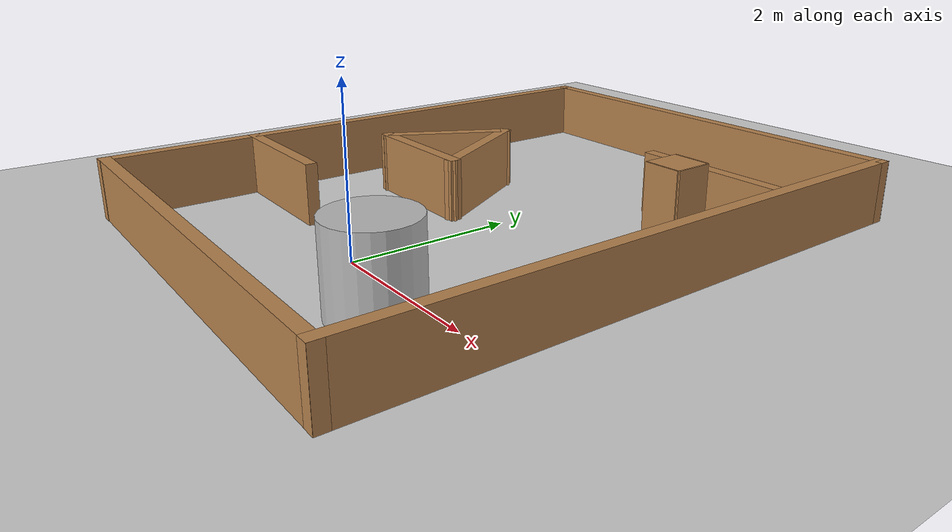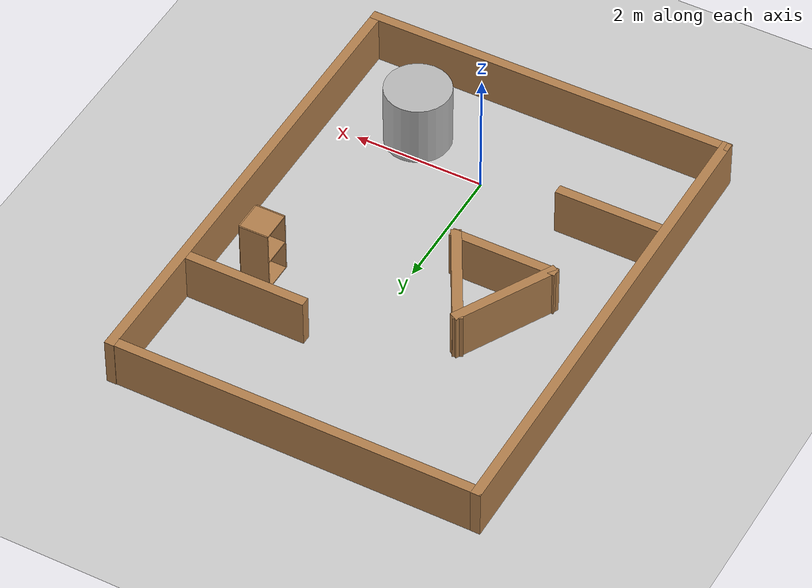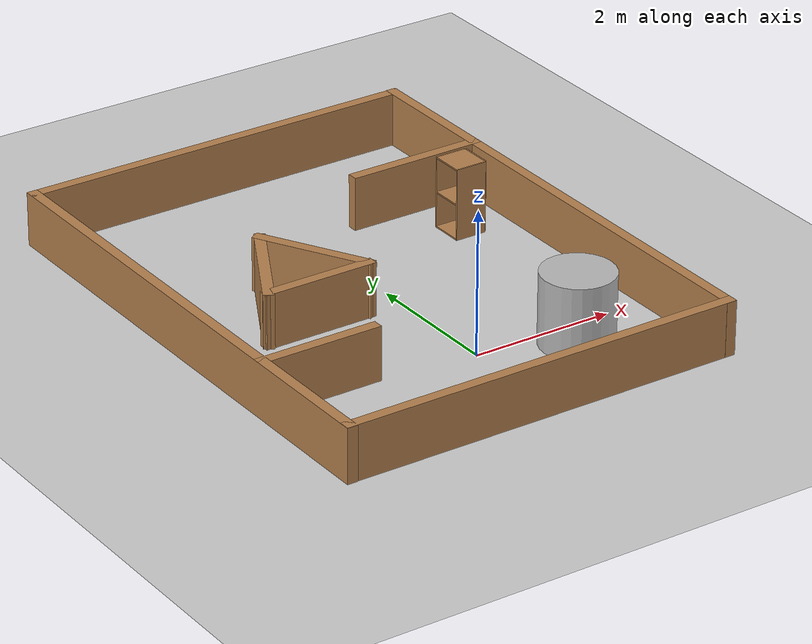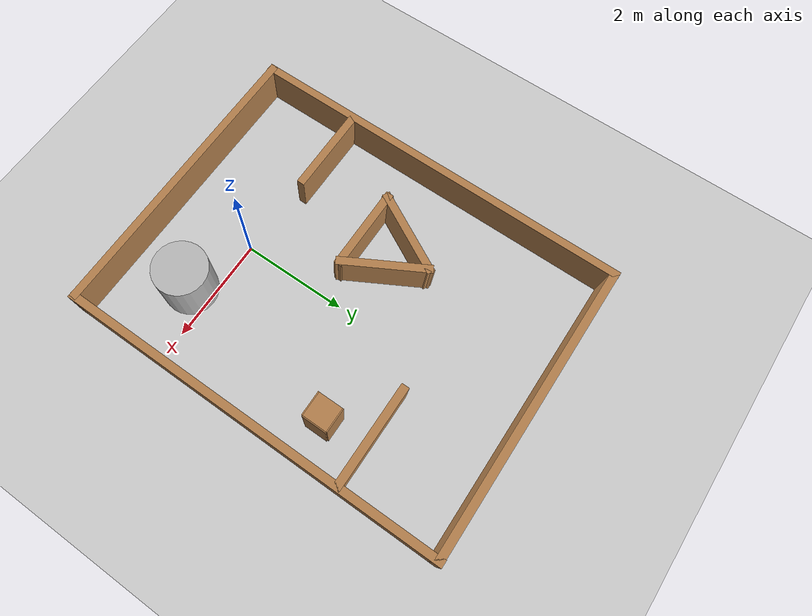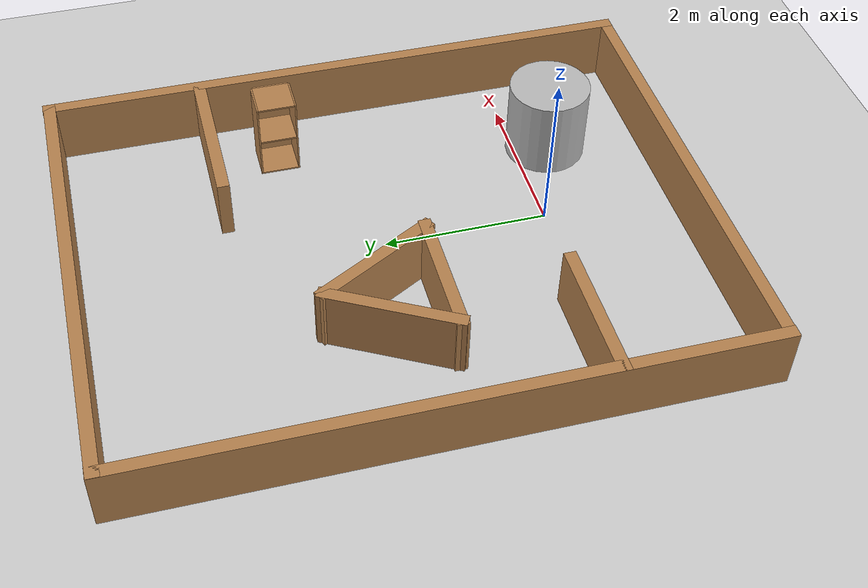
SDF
<sdf version="1.6">
 <world name="default">
  <light name="sun" type="directional">
   <pose>0 0 10 0 -0 0</pose>
   <diffuse>0.8 0.8 0.8 1</diffuse>
   <specular>0.2 0.2 0.2 1</specular>
   <attenuation>
    <range>1000</range>
    <constant>0.9</constant>
    <linear>0.01</linear>
    <quadratic>0.001</quadratic>
   </attenuation>
   <direction>0.5 0.1 -0.9</direction>
  </light>
  <scene><ambient>0.4 0.4 0.4 1</ambient><background>0.7 0.7 0.7 1</background><shadows>1</shadows></scene>
  <physics name="default_physics" default="0" type="ode">
   <max_step_size>0.01</max_step_size>
   <real_time_factor>1</real_time_factor>
   <real_time_update_rate>100</real_time_update_rate>
  </physics>
  <gravity>0 0 -9.8</gravity>
  <magnetic_field>6e-06 2.3e-05 -4.2e-05</magnetic_field>
  <atmosphere type="adiabatic"/>
  <spherical_coordinates>
   <surface_model>EARTH_WGS84</surface_model>
   <latitude_deg>0</latitude_deg>
   <longitude_deg>0</longitude_deg>
   <elevation>0</elevation>
   <heading_deg>0</heading_deg>
  </spherical_coordinates>
  <model name="ground_plane">
   <static>1</static>
   <link name="link">
    <collision name="collision">
     <geometry><plane><normal>0 0 1</normal><size>100 100</size></plane></geometry>
     <surface><friction><ode><mu>100</mu><mu2>50</mu2></ode></friction></surface>
    </collision>
    <visual name="visual">
     <cast_shadows>0</cast_shadows>
     <geometry><plane><normal>0 0 1</normal><size>100 100</size></plane></geometry>
     <material>
      <script><uri>file://media/materials/scripts/gazebo.material</uri><name>Gazebo/Grey</name></script>
     </material>
    </visual>
   </link>
   <pose>3.63562 1.30612 0 0 -0 0</pose>
  </model>
  <model name="arn_env1">
   <link name="Wall_10">
    <pose>-2.17783 -1.6685 -1 0 -0 0</pose>
    <inertial>
     <mass>1</mass>
     <inertia><ixx>1</ixx><ixy>0</ixy><ixz>0</ixz><iyy>1</iyy><iyz>0</iyz><izz>1</izz></inertia>
    </inertial>
    <visual name="Wall_10_Visual">
     <pose>0 0 1.25 0 -0 0</pose>
     <geometry><box><size>1.75 0.15 1</size></box></geometry>
     <material>
      <script><uri>file://media/materials/scripts/gazebo.material</uri><name>Gazebo/Wood</name></script>
      <ambient>1 1 1 1</ambient>
      <shader type="pixel"><normal_map>__default__</normal_map></shader>
      <diffuse>0.7 0.7 0.7 1</diffuse>
      <specular>0.01 0.01 0.01 1</specular>
      <emissive>0 0 0 1</emissive>
     </material>
     <meta><layer>0</layer></meta>
    </visual>
    <collision name="Wall_10_Collision">
     <pose>0 0 1.25 0 -0 0</pose>
     <geometry><box><size>1.75 0.15 2.5</size></box></geometry>
     <surface>
      <friction>
       <ode><mu>1</mu><mu2>1</mu2><fdir1>0 0 0</fdir1><slip1>0</slip1><slip2>0</slip2></ode>
       <torsional>
        <coefficient>1</coefficient>
        <patch_radius>0</patch_radius>
        <surface_radius>0</surface_radius>
        <use_patch_radius>1</use_patch_radius>
        <ode><slip>0</slip></ode>
       </torsional>
      </friction>
      <bounce><restitution_coefficient>0</restitution_coefficient><threshold>1e+06</threshold></bounce>
      <contact>
       <collide_without_contact>0</collide_without_contact>
       <collide_without_contact_bitmask>1</collide_without_contact_bitmask>
       <collide_bitmask>1</collide_bitmask>
       <ode>
        <soft_cfm>0</soft_cfm>
        <soft_erp>0.2</soft_erp>
        <kp>1e+13</kp>
        <kd>1</kd>
        <max_vel>0.01</max_vel>
        <min_depth>0</min_depth>
       </ode>
       <bullet>
        <split_impulse>1</split_impulse>
        <split_impulse_penetration_threshold>-0.01</split_impulse_penetration_threshold>
        <soft_cfm>0</soft_cfm>
        <soft_erp>0.2</soft_erp>
        <kp>1e+13</kp>
        <kd>1</kd>
       </bullet>
      </contact>
     </surface>
    </collision>
   </link>
   <link name="Wall_12">
    <pose>1.69694 1.90673 -1 0 -0 3.14159</pose>
    <inertial>
     <mass>1</mass>
     <inertia><ixx>1</ixx><ixy>0</ixy><ixz>0</ixz><iyy>1</iyy><iyz>0</iyz><izz>1</izz></inertia>
    </inertial>
    <visual name="Wall_12_Visual">
     <pose>0 0 1.25 0 -0 0</pose>
     <geometry><box><size>2 0.15 1</size></box></geometry>
     <material>
      <script><uri>file://media/materials/scripts/gazebo.material</uri><name>Gazebo/Wood</name></script>
      <ambient>1 1 1 1</ambient>
      <shader type="pixel"><normal_map>__default__</normal_map></shader>
      <diffuse>0.7 0.7 0.7 1</diffuse>
      <specular>0.01 0.01 0.01 1</specular>
      <emissive>0 0 0 1</emissive>
     </material>
     <meta><layer>0</layer></meta>
    </visual>
    <collision name="Wall_12_Collision">
     <pose>0 0 1.25 0 -0 0</pose>
     <geometry><box><size>2 0.15 2.5</size></box></geometry>
     <surface>
      <friction>
       <ode><mu>1</mu><mu2>1</mu2><fdir1>0 0 0</fdir1><slip1>0</slip1><slip2>0</slip2></ode>
       <torsional>
        <coefficient>1</coefficient>
        <patch_radius>0</patch_radius>
        <surface_radius>0</surface_radius>
        <use_patch_radius>1</use_patch_radius>
        <ode><slip>0</slip></ode>
       </torsional>
      </friction>
      <bounce><restitution_coefficient>0</restitution_coefficient><threshold>1e+06</threshold></bounce>
      <contact>
       <collide_without_contact>0</collide_without_contact>
       <collide_without_contact_bitmask>1</collide_without_contact_bitmask>
       <collide_bitmask>1</collide_bitmask>
       <ode>
        <soft_cfm>0</soft_cfm>
        <soft_erp>0.2</soft_erp>
        <kp>1e+13</kp>
        <kd>1</kd>
        <max_vel>0.01</max_vel>
        <min_depth>0</min_depth>
       </ode>
       <bullet>
        <split_impulse>1</split_impulse>
        <split_impulse_penetration_threshold>-0.01</split_impulse_penetration_threshold>
        <soft_cfm>0</soft_cfm>
        <soft_erp>0.2</soft_erp>
        <kp>1e+13</kp>
        <kd>1</kd>
       </bullet>
      </contact>
     </surface>
    </collision>
   </link>
   <link name="Wall_4">
    <pose>-0.174556 -3.54686 -1 0 -0 0</pose>
    <inertial>
     <mass>1</mass>
     <inertia><ixx>1</ixx><ixy>0</ixy><ixz>0</ixz><iyy>1</iyy><iyz>0</iyz><izz>1</izz></inertia>
    </inertial>
    <visual name="Wall_4_Visual">
     <pose>0 0 1.25 0 -0 0</pose>
     <geometry><box><size>5.75 0.15 1</size></box></geometry>
     <material>
      <script><uri>file://media/materials/scripts/gazebo.material</uri><name>Gazebo/Wood</name></script>
      <ambient>1 1 1 1</ambient>
      <shader type="pixel"><normal_map>__default__</normal_map></shader>
      <diffuse>0.7 0.7 0.7 1</diffuse>
      <specular>0.01 0.01 0.01 1</specular>
      <emissive>0 0 0 1</emissive>
     </material>
     <meta><layer>0</layer></meta>
    </visual>
    <collision name="Wall_4_Collision">
     <pose>0 0 1.25 0 -0 0</pose>
     <geometry><box><size>5.75 0.15 2.5</size></box></geometry>
     <surface>
      <friction>
       <ode><mu>1</mu><mu2>1</mu2><fdir1>0 0 0</fdir1><slip1>0</slip1><slip2>0</slip2></ode>
       <torsional>
        <coefficient>1</coefficient>
        <patch_radius>0</patch_radius>
        <surface_radius>0</surface_radius>
        <use_patch_radius>1</use_patch_radius>
        <ode><slip>0</slip></ode>
       </torsional>
      </friction>
      <bounce><restitution_coefficient>0</restitution_coefficient><threshold>1e+06</threshold></bounce>
      <contact>
       <collide_without_contact>0</collide_without_contact>
       <collide_without_contact_bitmask>1</collide_without_contact_bitmask>
       <collide_bitmask>1</collide_bitmask>
       <ode>
        <soft_cfm>0</soft_cfm>
        <soft_erp>0.2</soft_erp>
        <kp>1e+13</kp>
        <kd>1</kd>
        <max_vel>0.01</max_vel>
        <min_depth>0</min_depth>
       </ode>
       <bullet>
        <split_impulse>1</split_impulse>
        <split_impulse_penetration_threshold>-0.01</split_impulse_penetration_threshold>
        <soft_cfm>0</soft_cfm>
        <soft_erp>0.2</soft_erp>
        <kp>1e+13</kp>
        <kd>1</kd>
       </bullet>
      </contact>
     </surface>
    </collision>
   </link>
   <link name="Wall_4_clone">
    <pose>-0.172112 3.77995 -1 0 -0 0</pose>
    <inertial>
     <mass>1</mass>
     <inertia><ixx>1</ixx><ixy>0</ixy><ixz>0</ixz><iyy>1</iyy><iyz>0</iyz><izz>1</izz></inertia>
    </inertial>
    <visual name="Wall_4_Visual">
     <pose>0 0 1.25 0 -0 0</pose>
     <geometry><box><size>5.75 0.15 1</size></box></geometry>
     <material>
      <script><uri>file://media/materials/scripts/gazebo.material</uri><name>Gazebo/Wood</name></script>
      <ambient>1 1 1 1</ambient>
      <shader type="pixel"><normal_map>__default__</normal_map></shader>
      <diffuse>0.7 0.7 0.7 1</diffuse>
      <specular>0.01 0.01 0.01 1</specular>
      <emissive>0 0 0 1</emissive>
     </material>
     <meta><layer>0</layer></meta>
    </visual>
    <collision name="Wall_4_Collision">
     <pose>0 0 1.25 0 -0 0</pose>
     <geometry><box><size>5.75 0.15 2.5</size></box></geometry>
     <surface>
      <friction>
       <ode><mu>1</mu><mu2>1</mu2><fdir1>0 0 0</fdir1><slip1>0</slip1><slip2>0</slip2></ode>
       <torsional>
        <coefficient>1</coefficient>
        <patch_radius>0</patch_radius>
        <surface_radius>0</surface_radius>
        <use_patch_radius>1</use_patch_radius>
        <ode><slip>0</slip></ode>
       </torsional>
      </friction>
      <bounce><restitution_coefficient>0</restitution_coefficient><threshold>1e+06</threshold></bounce>
      <contact>
       <collide_without_contact>0</collide_without_contact>
       <collide_without_contact_bitmask>1</collide_without_contact_bitmask>
       <collide_bitmask>1</collide_bitmask>
       <ode>
        <soft_cfm>0</soft_cfm>
        <soft_erp>0.2</soft_erp>
        <kp>1e+13</kp>
        <kd>1</kd>
        <max_vel>0.01</max_vel>
        <min_depth>0</min_depth>
       </ode>
       <bullet>
        <split_impulse>1</split_impulse>
        <split_impulse_penetration_threshold>-0.01</split_impulse_penetration_threshold>
        <soft_cfm>0</soft_cfm>
        <soft_erp>0.2</soft_erp>
        <kp>1e+13</kp>
        <kd>1</kd>
       </bullet>
      </contact>
     </surface>
    </collision>
   </link>
   <link name="Wall_6">
    <pose>-2.97739 0.11496 -1 0 -0 1.57045</pose>
    <inertial>
     <mass>1</mass>
     <inertia><ixx>1</ixx><ixy>0</ixy><ixz>0</ixz><iyy>1</iyy><iyz>0</iyz><izz>1</izz></inertia>
    </inertial>
    <visual name="Wall_6_Visual">
     <pose>0 0 1.25 0 -0 0</pose>
     <geometry><box><size>7.48534 0.15 1</size></box></geometry>
     <material>
      <script><uri>file://media/materials/scripts/gazebo.material</uri><name>Gazebo/Wood</name></script>
      <ambient>1 1 1 1</ambient>
      <shader type="pixel"><normal_map>__default__</normal_map></shader>
      <diffuse>0.7 0.7 0.7 1</diffuse>
      <specular>0.01 0.01 0.01 1</specular>
      <emissive>0 0 0 1</emissive>
     </material>
     <meta><layer>0</layer></meta>
    </visual>
    <collision name="Wall_6_Collision">
     <pose>0 0 1.25 0 -0 0</pose>
     <geometry><box><size>7.48534 0.15 2.5</size></box></geometry>
     <surface>
      <friction>
       <ode><mu>1</mu><mu2>1</mu2><fdir1>0 0 0</fdir1><slip1>0</slip1><slip2>0</slip2></ode>
       <torsional>
        <coefficient>1</coefficient>
        <patch_radius>0</patch_radius>
        <surface_radius>0</surface_radius>
        <use_patch_radius>1</use_patch_radius>
        <ode><slip>0</slip></ode>
       </torsional>
      </friction>
      <bounce><restitution_coefficient>0</restitution_coefficient><threshold>1e+06</threshold></bounce>
      <contact>
       <collide_without_contact>0</collide_without_contact>
       <collide_without_contact_bitmask>1</collide_without_contact_bitmask>
       <collide_bitmask>1</collide_bitmask>
       <ode>
        <soft_cfm>0</soft_cfm>
        <soft_erp>0.2</soft_erp>
        <kp>1e+13</kp>
        <kd>1</kd>
        <max_vel>0.01</max_vel>
        <min_depth>0</min_depth>
       </ode>
       <bullet>
        <split_impulse>1</split_impulse>
        <split_impulse_penetration_threshold>-0.01</split_impulse_penetration_threshold>
        <soft_cfm>0</soft_cfm>
        <soft_erp>0.2</soft_erp>
        <kp>1e+13</kp>
        <kd>1</kd>
       </bullet>
      </contact>
     </surface>
    </collision>
   </link>
   <link name="Wall_6_clone">
    <pose>2.62604 0.119071 -1 0 -0 1.57045</pose>
    <inertial>
     <mass>1</mass>
     <inertia><ixx>1</ixx><ixy>0</ixy><ixz>0</ixz><iyy>1</iyy><iyz>0</iyz><izz>1</izz></inertia>
    </inertial>
    <visual name="Wall_6_Visual">
     <pose>0 0 1.25 0 -0 0</pose>
     <geometry><box><size>7.48534 0.15 1</size></box></geometry>
     <material>
      <script><uri>file://media/materials/scripts/gazebo.material</uri><name>Gazebo/Wood</name></script>
      <ambient>1 1 1 1</ambient>
      <shader type="pixel"><normal_map>__default__</normal_map></shader>
      <diffuse>0.7 0.7 0.7 1</diffuse>
      <specular>0.01 0.01 0.01 1</specular>
      <emissive>0 0 0 1</emissive>
     </material>
     <meta><layer>0</layer></meta>
    </visual>
    <collision name="Wall_6_Collision">
     <pose>0 0 1.25 0 -0 0</pose>
     <geometry><box><size>7.48534 0.15 2.5</size></box></geometry>
     <surface>
      <friction>
       <ode><mu>1</mu><mu2>1</mu2><fdir1>0 0 0</fdir1><slip1>0</slip1><slip2>0</slip2></ode>
       <torsional>
        <coefficient>1</coefficient>
        <patch_radius>0</patch_radius>
        <surface_radius>0</surface_radius>
        <use_patch_radius>1</use_patch_radius>
        <ode><slip>0</slip></ode>
       </torsional>
      </friction>
      <bounce><restitution_coefficient>0</restitution_coefficient><threshold>1e+06</threshold></bounce>
      <contact>
       <collide_without_contact>0</collide_without_contact>
       <collide_without_contact_bitmask>1</collide_without_contact_bitmask>
       <collide_bitmask>1</collide_bitmask>
       <ode>
        <soft_cfm>0</soft_cfm>
        <soft_erp>0.2</soft_erp>
        <kp>1e+13</kp>
        <kd>1</kd>
        <max_vel>0.01</max_vel>
        <min_depth>0</min_depth>
       </ode>
       <bullet>
        <split_impulse>1</split_impulse>
        <split_impulse_penetration_threshold>-0.01</split_impulse_penetration_threshold>
        <soft_cfm>0</soft_cfm>
        <soft_erp>0.2</soft_erp>
        <kp>1e+13</kp>
        <kd>1</kd>
       </bullet>
      </contact>
     </surface>
    </collision>
   </link>
   <static>1</static>
   <pose>-0.02261 1.88504 0 0 -0 0</pose>
  </model>
  <model name="cabinet">
   <static>1</static>
   <link name="cabinet_bottom_plate">
    <inertial>
     <pose>0 0 -1 0 -0 0</pose>
     <inertia><ixx>2.05</ixx><ixy>0</ixy><ixz>0</ixz><iyy>2.05</iyy><iyz>0</iyz><izz>2.05</izz></inertia>
     <mass>25</mass>
    </inertial>
    <collision name="cabinet_bottom_plate_geom">
     <pose>0 0 0.01 0 -0 0</pose>
     <geometry><box><size>0.45 0.45 0.02</size></box></geometry>
    </collision>
    <visual name="cabinet_bottom_plate_geom_visual">
     <pose>0 0 0.01 0 -0 0</pose>
     <geometry><box><size>0.45 0.45 0.02</size></box></geometry>
     <material>
      <script><uri>file://media/materials/scripts/gazebo.material</uri><name>Gazebo/Wood</name></script>
     </material>
    </visual>
    <collision name="cabinet_bottom_plate_geom_cabinet_back_plate">
     <pose>0.235 0 0.51 0 -0 0</pose>
     <geometry><box><size>0.02 0.45 1.02</size></box></geometry>
    </collision>
    <visual name="cabinet_bottom_plate_geom_cabinet_back_plate_visual">
     <pose>0.235 0 0.51 0 -0 0</pose>
     <geometry><box><size>0.02 0.45 1.02</size></box></geometry>
     <material>
      <script><uri>file://media/materials/scripts/gazebo.material</uri><name>Gazebo/Wood</name></script>
     </material>
    </visual>
    <collision name="cabinet_bottom_plate_geom_cabinet_left_plate">
     <pose>0 0.235 0.51 0 -0 0</pose>
     <geometry><box><size>0.45 0.02 1.02</size></box></geometry>
    </collision>
    <visual name="cabinet_bottom_plate_geom_cabinet_left_plate_visual">
     <pose>0 0.235 0.51 0 -0 0</pose>
     <geometry><box><size>0.45 0.02 1.02</size></box></geometry>
     <material>
      <script><uri>file://media/materials/scripts/gazebo.material</uri><name>Gazebo/Wood</name></script>
     </material>
    </visual>
    <collision name="cabinet_bottom_plate_geom_cabinet_middle_plate">
     <pose>0 0 0.51 0 -0 0</pose>
     <geometry><box><size>0.45 0.45 0.02</size></box></geometry>
    </collision>
    <visual name="cabinet_bottom_plate_geom_cabinet_middle_plate_visual">
     <pose>0 0 0.51 0 -0 0</pose>
     <geometry><box><size>0.45 0.45 0.02</size></box></geometry>
     <material>
      <script><uri>file://media/materials/scripts/gazebo.material</uri><name>Gazebo/Wood</name></script>
     </material>
    </visual>
    <collision name="cabinet_bottom_plate_geom_cabinet_right_plate">
     <pose>0 -0.235 0.51 0 -0 0</pose>
     <geometry><box><size>0.45 0.02 1.02</size></box></geometry>
    </collision>
    <visual name="cabinet_bottom_plate_geom_cabinet_right_plate_visual">
     <pose>0 -0.235 0.51 0 -0 0</pose>
     <geometry><box><size>0.45 0.02 1.02</size></box></geometry>
     <material>
      <script><uri>file://media/materials/scripts/gazebo.material</uri><name>Gazebo/Wood</name></script>
     </material>
    </visual>
    <collision name="cabinet_bottom_plate_geom_cabinet_top_plate">
     <pose>0 0 1.01 0 -0 0</pose>
     <geometry><box><size>0.45 0.45 0.02</size></box></geometry>
    </collision>
    <visual name="cabinet_bottom_plate_geom_cabinet_top_plate_visual">
     <pose>0 0 1.01 0 -0 0</pose>
     <geometry><box><size>0.45 0.45 0.02</size></box></geometry>
     <material>
      <script><uri>file://media/materials/scripts/gazebo.material</uri><name>Gazebo/Wood</name></script>
     </material>
    </visual>
   </link>
   <pose>1.82174 2.96791 0 0 -0 0</pose>
  </model>
  <model name="unit_cylinder">
   <pose>1.23227 -0.405544 0.499096 4.8e-05 4.8e-05 -1.9e-05</pose>
   <link name="link">
    <inertial>
     <mass>1</mass>
     <inertia><ixx>0.145833</ixx><ixy>0</ixy><ixz>0</ixz><iyy>0.145833</iyy><iyz>0</iyz><izz>0.125</izz></inertia>
    </inertial>
    <collision name="collision">
     <geometry><cylinder><radius>0.5</radius><length>1</length></cylinder></geometry>
    </collision>
    <visual name="visual">
     <geometry><cylinder><radius>0.5</radius><length>1</length></cylinder></geometry>
     <material>
      <script><name>Gazebo/Marble</name><uri>file://media/materials/scripts/gazebo.material</uri></script>
     </material>
    </visual>
   </link>
  </model>
  <model name="Untitled">
   <link name="Wall_0">
    <pose>-0.376329 0 -1 0 0 -2.06922</pose>
    <inertial>
     <mass>1</mass>
     <inertia><ixx>1</ixx><ixy>0</ixy><ixz>0</ixz><iyy>1</iyy><iyz>0</iyz><izz>1</izz></inertia>
    </inertial>
    <visual name="Wall_0_Visual">
     <pose>0 0 1.25 0 -0 0</pose>
     <geometry><box><size>1.68667 0.15 1</size></box></geometry>
     <material>
      <script><uri>file://media/materials/scripts/gazebo.material</uri><name>Gazebo/Wood</name></script>
      <ambient>1 1 1 1</ambient>
      <shader type="pixel"><normal_map>__default__</normal_map></shader>
      <diffuse>1 1 1 1</diffuse>
      <specular>0.2 0.2 0.2 1</specular>
      <emissive>0 0 0 1</emissive>
     </material>
     <meta><layer>0</layer></meta>
    </visual>
    <collision name="Wall_0_Collision">
     <pose>0 0 1.25 0 -0 0</pose>
     <geometry><box><size>1.68667 0.15 2.5</size></box></geometry>
     <surface>
      <friction>
       <ode><mu>1</mu><mu2>1</mu2><fdir1>0 0 0</fdir1><slip1>0</slip1><slip2>0</slip2></ode>
       <torsional>
        <coefficient>1</coefficient>
        <patch_radius>0</patch_radius>
        <surface_radius>0</surface_radius>
        <use_patch_radius>1</use_patch_radius>
        <ode><slip>0</slip></ode>
       </torsional>
      </friction>
      <bounce><restitution_coefficient>0</restitution_coefficient><threshold>1e+06</threshold></bounce>
      <contact>
       <collide_without_contact>0</collide_without_contact>
       <collide_without_contact_bitmask>1</collide_without_contact_bitmask>
       <collide_bitmask>1</collide_bitmask>
       <ode>
        <soft_cfm>0</soft_cfm>
        <soft_erp>0.2</soft_erp>
        <kp>1e+13</kp>
        <kd>1</kd>
        <max_vel>0.01</max_vel>
        <min_depth>0</min_depth>
       </ode>
       <bullet>
        <split_impulse>1</split_impulse>
        <split_impulse_penetration_threshold>-0.01</split_impulse_penetration_threshold>
        <soft_cfm>0</soft_cfm>
        <soft_erp>0.2</soft_erp>
        <kp>1e+13</kp>
        <kd>1</kd>
       </bullet>
      </contact>
     </surface>
    </collision>
   </link>
   <link name="Wall_1">
    <pose>-0.000149 -0.674855 -1 0 -0 0</pose>
    <inertial>
     <mass>1</mass>
     <inertia><ixx>1</ixx><ixy>0</ixy><ixz>0</ixz><iyy>1</iyy><iyz>0</iyz><izz>1</izz></inertia>
    </inertial>
    <visual name="Wall_1_Visual">
     <pose>0 0 1.25 0 -0 0</pose>
     <geometry><box><size>1.63696 0.15 1</size></box></geometry>
     <material>
      <script><uri>file://media/materials/scripts/gazebo.material</uri><name>Gazebo/Wood</name></script>
      <ambient>1 1 1 1</ambient>
      <shader type="pixel"><normal_map>__default__</normal_map></shader>
      <diffuse>1 1 1 1</diffuse>
      <specular>0.2 0.2 0.2 1</specular>
      <emissive>0 0 0 1</emissive>
     </material>
     <meta><layer>0</layer></meta>
    </visual>
    <collision name="Wall_1_Collision">
     <pose>0 0 1.25 0 -0 0</pose>
     <geometry><box><size>1.63696 0.15 2.5</size></box></geometry>
     <surface>
      <friction>
       <ode><mu>1</mu><mu2>1</mu2><fdir1>0 0 0</fdir1><slip1>0</slip1><slip2>0</slip2></ode>
       <torsional>
        <coefficient>1</coefficient>
        <patch_radius>0</patch_radius>
        <surface_radius>0</surface_radius>
        <use_patch_radius>1</use_patch_radius>
        <ode><slip>0</slip></ode>
       </torsional>
      </friction>
      <bounce><restitution_coefficient>0</restitution_coefficient><threshold>1e+06</threshold></bounce>
      <contact>
       <collide_without_contact>0</collide_without_contact>
       <collide_without_contact_bitmask>1</collide_without_contact_bitmask>
       <collide_bitmask>1</collide_bitmask>
       <ode>
        <soft_cfm>0</soft_cfm>
        <soft_erp>0.2</soft_erp>
        <kp>1e+13</kp>
        <kd>1</kd>
        <max_vel>0.01</max_vel>
        <min_depth>0</min_depth>
       </ode>
       <bullet>
        <split_impulse>1</split_impulse>
        <split_impulse_penetration_threshold>-0.01</split_impulse_penetration_threshold>
        <soft_cfm>0</soft_cfm>
        <soft_erp>0.2</soft_erp>
        <kp>1e+13</kp>
        <kd>1</kd>
       </bullet>
      </contact>
     </surface>
    </collision>
   </link>
   <link name="Wall_2">
    <pose>0.367149 0 -1 0 -0 2.07932</pose>
    <inertial>
     <mass>1</mass>
     <inertia><ixx>1</ixx><ixy>0</ixy><ixz>0</ixz><iyy>1</iyy><iyz>0</iyz><izz>1</izz></inertia>
    </inertial>
    <visual name="Wall_2_Visual">
     <pose>0 0 1.25 0 -0 0</pose>
     <geometry><box><size>1.69524 0.15 1</size></box></geometry>
     <material>
      <script><uri>file://media/materials/scripts/gazebo.material</uri><name>Gazebo/Wood</name></script>
      <ambient>1 1 1 1</ambient>
      <shader type="pixel"><normal_map>__default__</normal_map></shader>
      <diffuse>1 1 1 1</diffuse>
      <specular>0.2 0.2 0.2 1</specular>
      <emissive>0 0 0 1</emissive>
     </material>
     <meta><layer>0</layer></meta>
    </visual>
    <collision name="Wall_2_Collision">
     <pose>0 0 1.25 0 -0 0</pose>
     <geometry><box><size>1.69524 0.15 2.5</size></box></geometry>
     <surface>
      <friction>
       <ode><mu>1</mu><mu2>1</mu2><fdir1>0 0 0</fdir1><slip1>0</slip1><slip2>0</slip2></ode>
       <torsional>
        <coefficient>1</coefficient>
        <patch_radius>0</patch_radius>
        <surface_radius>0</surface_radius>
        <use_patch_radius>1</use_patch_radius>
        <ode><slip>0</slip></ode>
       </torsional>
      </friction>
      <bounce><restitution_coefficient>0</restitution_coefficient><threshold>1e+06</threshold></bounce>
      <contact>
       <collide_without_contact>0</collide_without_contact>
       <collide_without_contact_bitmask>1</collide_without_contact_bitmask>
       <collide_bitmask>1</collide_bitmask>
       <ode>
        <soft_cfm>0</soft_cfm>
        <soft_erp>0.2</soft_erp>
        <kp>1e+13</kp>
        <kd>1</kd>
        <max_vel>0.01</max_vel>
        <min_depth>0</min_depth>
       </ode>
       <bullet>
        <split_impulse>1</split_impulse>
        <split_impulse_penetration_threshold>-0.01</split_impulse_penetration_threshold>
        <soft_cfm>0</soft_cfm>
        <soft_erp>0.2</soft_erp>
        <kp>1e+13</kp>
        <kd>1</kd>
       </bullet>
      </contact>
     </surface>
    </collision>
   </link>
   <static>1</static>
   <pose>-1.24573 2.33291 0 0 -0 0</pose>
  </model>
 </world>
</sdf>
